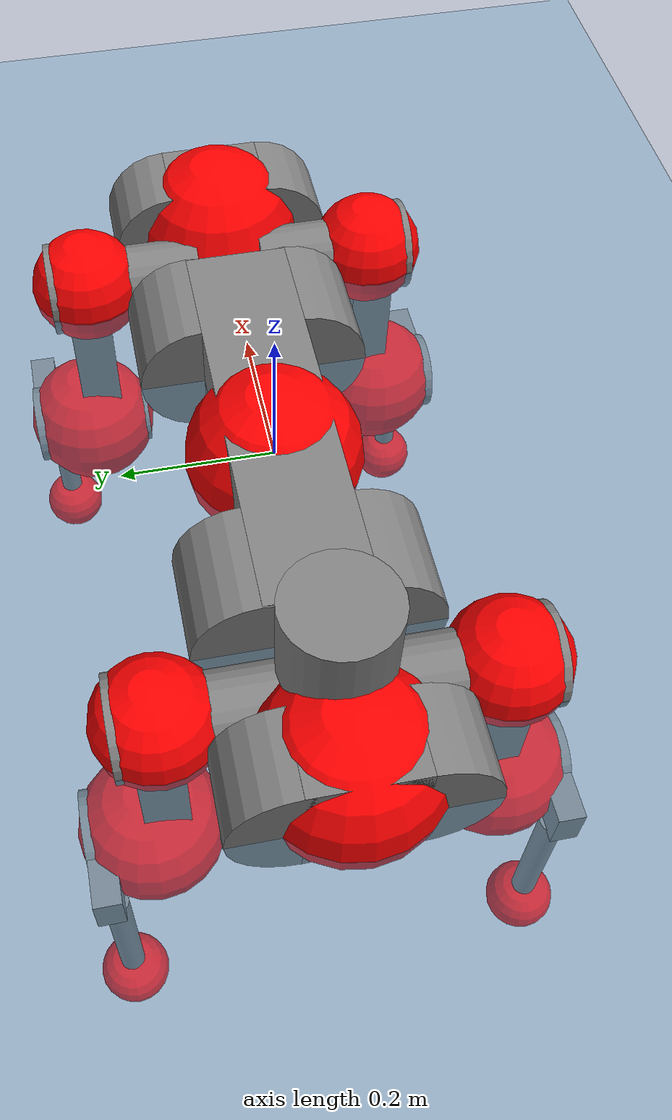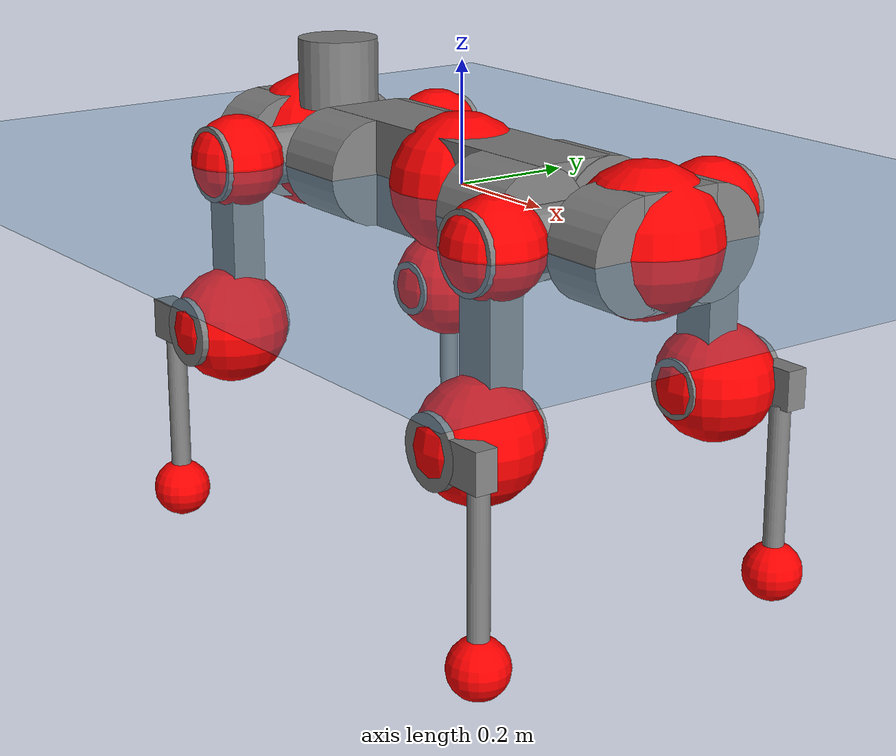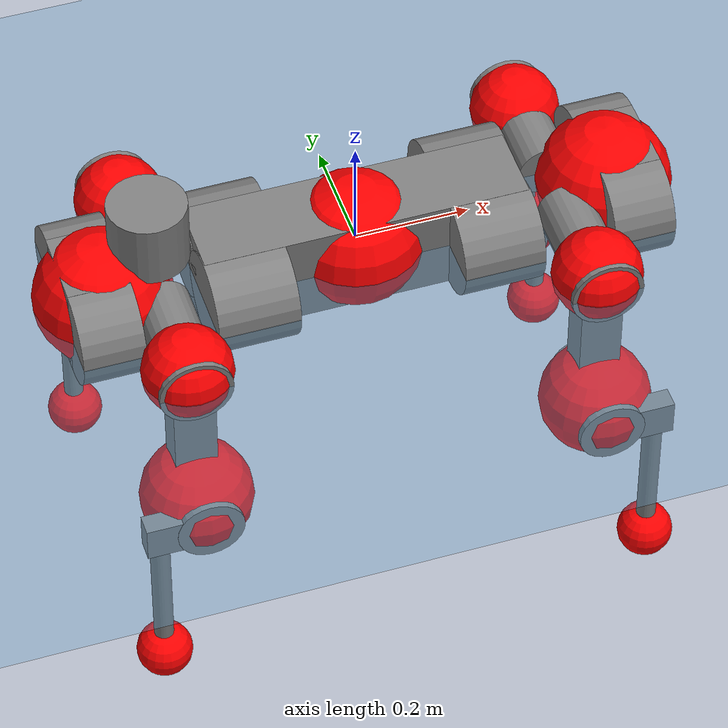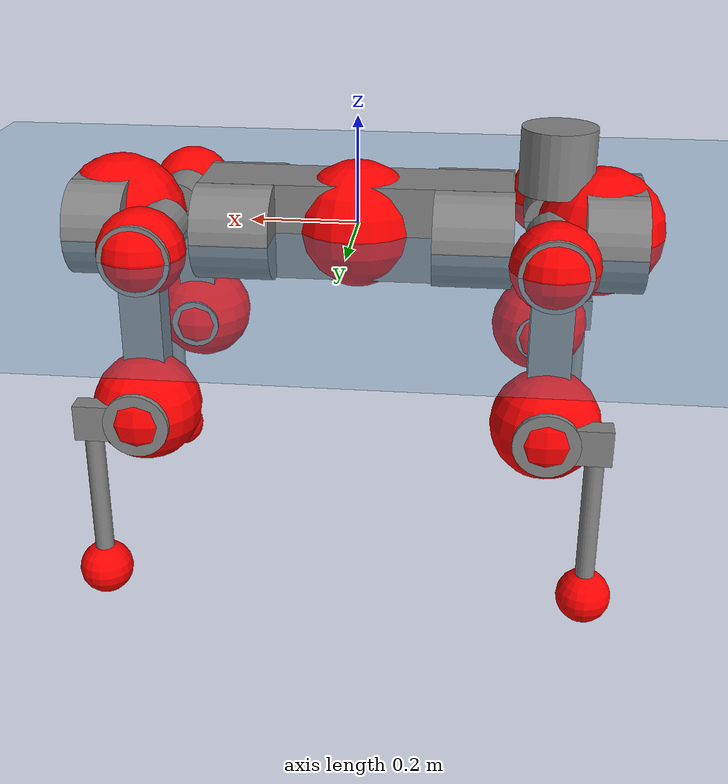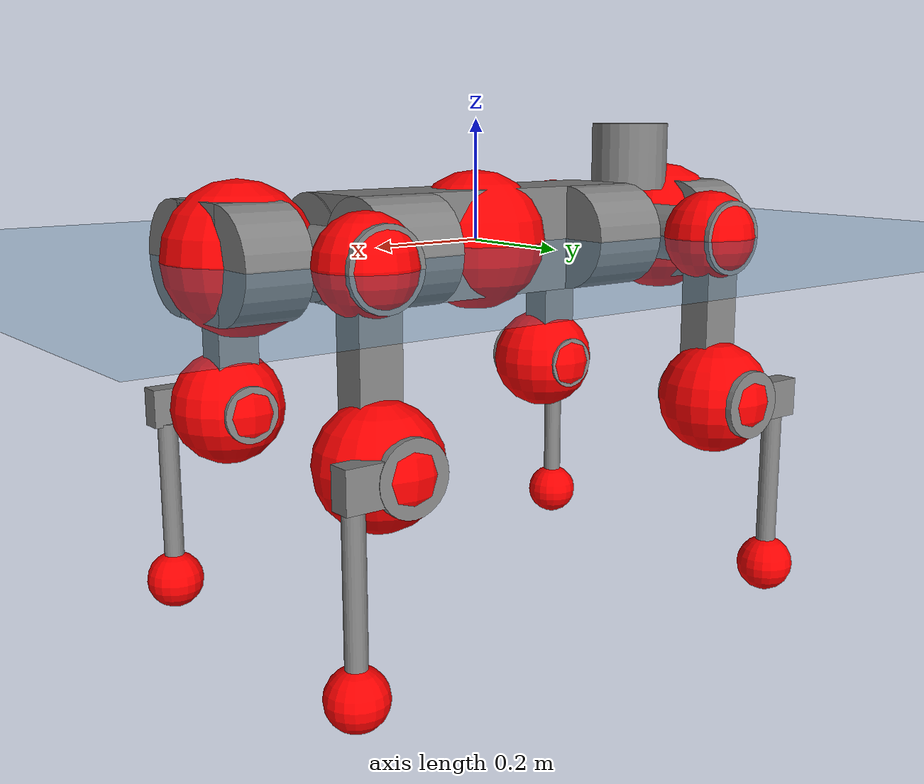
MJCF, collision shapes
<mujoco model="anymal_c">
  <compiler angle="radian" assetdir="assets" balanceinertia="true" inertiafromgeom="false"/>

  <option timestep="0.005" density="1.2" viscosity="2e-05"/>

  <size nkey="1"/>

  <visual>
    <quality shadowsize="8192"/>
    <map shadowclip="0.5"/>
  </visual>

  <default>
    <default class="/">
      <material specular="0" shininess="0.25"/>
      <geom contype="0" conaffinity="0" group="1" solref="-1000 -80"/>
      <site size="0.01 0.005 0.005" group="5"/>
      <general forcelimited="true" forcerange="-80 80" biastype="affine" gainprm="80" biasprm="0 -80 -2"/>
      <default class="anymal_c">
        <joint armature="0.01" damping="0.01" frictionloss="0.1"/>
        <default class="visual">
          <geom type="mesh" group="2"/>
          <default class="visual_zflip"/>
        </default>
        <default class="collision">
          <geom type="cylinder" group="3"/>
          <default class="foot">
            <geom size="0.03 0 0" type="sphere" condim="6" priority="1" friction="0.8 0.02 0.01" solimp="0.015 1 0.03"/>
          </default>
        </default>
      </default>
      <default class="reward_collision_sphere">
        <geom group="5" rgba="1 0 0 1"/>
      </default>
    </default>
  </default>

  <asset>
    <texture type="skybox" colorspace="auto" name="//unnamed_texture_0" builtin="gradient" rgb1="0.95 0.95 0.95" rgb2="0.95 0.95 0.95" width="100" height="600"/>
    <texture type="2d" colorspace="auto" name="texplane" builtin="checker" rgb1="0.345 0.575 0.748" rgb2="0.345 0.575 0.748" markrgb="1 1 1" width="512" height="512"/>
    <texture type="2d" colorspace="linear" name="base" file="base.png"/>
    <texture type="2d" colorspace="linear" name="top_shell" file="top_shell.png"/>
    <texture type="2d" colorspace="linear" name="bottom_shell" file="bottom_shell.png"/>
    <texture type="2d" colorspace="linear" name="remote" file="remote.png"/>
    <texture type="2d" colorspace="linear" name="hatch" file="hatch.png"/>
    <texture type="2d" colorspace="linear" name="handle" file="handle.png"/>
    <texture type="2d" colorspace="linear" name="face" file="face.png"/>
    <texture type="2d" colorspace="linear" name="battery" file="battery.png"/>
    <texture type="2d" colorspace="linear" name="lidar_cage" file="lidar_cage.png"/>
    <texture type="2d" colorspace="linear" name="depth_camera" file="depth_camera.png"/>
    <texture type="2d" colorspace="linear" name="wide_angle_camera" file="wide_angle_camera.png"/>
    <texture type="2d" colorspace="linear" name="lidar" file="lidar.png"/>
    <texture type="2d" colorspace="linear" name="drive" file="drive.png"/>
    <texture type="2d" colorspace="linear" name="hip_l" file="hip_l.png"/>
    <texture type="2d" colorspace="linear" name="shank_l" file="shank_l.png"/>
    <texture type="2d" colorspace="linear" name="foot" file="foot.png"/>
    <texture type="2d" colorspace="linear" name="thigh" file="thigh.png"/>
    <texture type="2d" colorspace="linear" name="shank_r" file="shank_r.png"/>
    <texture type="2d" colorspace="linear" name="hip_r" file="hip_r.png"/>
    <material name="MatPlane" class="/" texture="texplane" texuniform="true" texrepeat="2 2" specular="0.9" shininess="0.5"/>
    <material name="black_plastic" class="/" rgba="0.007 0.007 0.007 1"/>
    <material name="green" class="/" rgba="0.052 0.178 0.033 1"/>
    <material name="red" class="/" rgba="0.178 0.006 0.005 1"/>
    <material name="yellow" class="/" rgba="0.178 0.119 0.006 1"/>
    <material name="lwl" class="/" rgba="0.8 0.8 0.8 1"/>
    <material name="base" class="/" texture="base"/>
    <material name="top_shell" class="/" texture="top_shell"/>
    <material name="bottom_shell" class="/" texture="bottom_shell"/>
    <material name="hip_l" class="/" texture="hip_l"/>
    <material name="thigh" class="/" texture="thigh"/>
    <material name="shank_l" class="/" texture="shank_l"/>
    <material name="foot" class="/" texture="foot"/>
    <material name="hip_r" class="/" texture="hip_r"/>
    <material name="shank" class="/" texture="shank_r"/>
    <material name="hatch" class="/" texture="hatch"/>
    <material name="remote" class="/" texture="remote"/>
    <material name="handle" class="/" texture="handle"/>
    <material name="face" class="/" texture="face"/>
    <material name="depth_camera" class="/" texture="depth_camera"/>
    <material name="wide_angle_camera" class="/" texture="wide_angle_camera"/>
    <material name="battery" class="/" texture="battery"/>
    <material name="lidar_cage" class="/" texture="lidar_cage"/>
    <material name="lidar" class="/" texture="lidar"/>
    <material name="drive" class="/" texture="drive"/>
    <mesh name="base_0" class="/" file="base_0.obj"/>
    <mesh name="base_1" class="/" file="base_1.obj"/>
    <mesh name="base_2" class="/" file="base_2.obj"/>
    <mesh name="base_3" class="/" file="base_3.obj"/>
    <mesh name="base_4" class="/" file="base_4.obj"/>
    <mesh name="base_5" class="/" file="base_5.obj"/>
    <mesh name="top_shell" class="/" file="top_shell.obj"/>
    <mesh name="bottom_shell" class="/" file="bottom_shell.obj"/>
    <mesh name="remote" class="/" file="remote.obj"/>
    <mesh name="handle" class="/" file="handle.obj"/>
    <mesh name="face" class="/" file="face.obj"/>
    <mesh name="wide_angle_camera" class="/" file="wide_angle_camera.obj"/>
    <mesh name="depth_camera" class="/" file="depth_camera.obj"/>
    <mesh name="battery" class="/" file="battery.obj"/>
    <mesh name="lidar_cage" class="/" file="lidar_cage.obj"/>
    <mesh name="lidar" class="/" file="lidar.obj"/>
    <mesh name="drive" class="/" file="drive.obj"/>
    <mesh name="hip_l" class="/" file="hip_l.obj"/>
    <mesh name="thigh" class="/" file="thigh.obj"/>
    <mesh name="shank_l" class="/" file="shank_l.obj"/>
    <mesh name="foot" class="/" file="foot.obj"/>
    <mesh name="hip_r" class="/" file="hip_r.obj"/>
    <mesh name="hatch" class="/" file="hatch.obj"/>
    <mesh name="shank_r" class="/" file="shank_r.obj"/>
  </asset>

  <worldbody>
    <geom name="floor" class="/" size="100 100 0.125" type="plane" group="0" material="MatPlane"/>
    <light name="toplight_shadow" class="/" pos="0 0 5" dir="0.0990148 0.0990148 -0.990148" type="directional" ambient="0.04 0.04 0.04" diffuse="0.55 0.55 0.55" specular="0.12 0.12 0.12"/>
    <light name="toplight_fill" class="/" pos="0 0 5" dir="0.0990148 0.0990148 -0.990148" type="directional" castshadow="false" ambient="0.04 0.04 0.04" diffuse="0.3 0.3 0.3" specular="0.08 0.08 0.08"/>
    <body name="trunk" childclass="anymal_c" pos="0.00036372 0.000118246 0.000223258" quat="1 -0.000115384 -5.08056e-05 0.000215994">
      <inertial pos="0.0019213 -0.00116522 0.0477895" quat="0.498259 0.499288 0.501122 0.501325" mass="17.2621" diaginertia="0.584031 0.502282 0.19944"/>
      <joint name="//unnamed_joint_0" type="free" armature="0" damping="0" frictionloss="0"/>
      <geom name="//unnamed_geom_1" class="visual" material="green" mesh="base_0"/>
      <geom name="//unnamed_geom_2" class="visual" material="yellow" mesh="base_1"/>
      <geom name="//unnamed_geom_3" class="visual" material="red" mesh="base_2"/>
      <geom name="//unnamed_geom_4" class="visual" material="black_plastic" mesh="base_3"/>
      <geom name="//unnamed_geom_5" class="visual" material="lwl" mesh="base_4"/>
      <geom name="//unnamed_geom_6" class="visual" material="base" mesh="base_5"/>
      <geom name="trunk_1" class="collision" size="0.28321 0.068361 0.0878928" type="box"/>
      <geom name="trunk_2" class="collision" size="0.0878928 0.0708025" pos="0.214299 0.067141 0" quat="0.707107 0 0.707107 0"/>
      <geom name="trunk_3" class="collision" size="0.0878928 0.0708025" pos="-0.214299 0.067141 0" quat="0.707107 0 0.707107 0"/>
      <geom name="trunk_4" class="collision" size="0.0878928 0.0708025" pos="0.214299 -0.067141 0" quat="0.707107 0 0.707107 0"/>
      <geom name="trunk_5" class="collision" size="0.0878928 0.0708025" pos="-0.214299 -0.067141 0" quat="0.707107 0 0.707107 0"/>
      <geom name="//unnamed_geom_12" class="visual" material="top_shell" mesh="top_shell"/>
      <geom name="//unnamed_geom_13" class="visual" material="bottom_shell" mesh="bottom_shell"/>
      <geom name="//unnamed_geom_14" class="visual" material="remote" mesh="remote"/>
      <geom name="//unnamed_geom_15" class="visual" material="handle" mesh="handle"/>
      <geom name="//unnamed_geom_16" class="visual" pos="0.4084 0 0" quat="1 0 0 0" material="face" mesh="face"/>
      <geom name="trunk_6" class="collision" size="0.0537122 0.068361 0.0878928" pos="0.462591 0 0" type="box"/>
      <geom name="//unnamed_geom_18" class="collision" size="0.0878928 0.0537122" pos="0.462591 0.067141 0" quat="0.707107 0 0.707107 0"/>
      <geom name="//unnamed_geom_19" class="collision" size="0.0878928 0.0537122" pos="0.462591 -0.067141 0" quat="0.707107 0 0.707107 0"/>
      <geom name="//unnamed_geom_20" class="visual" pos="0.454856 0 -0.0287715" quat="0.965926 0 0.258819 0" material="depth_camera" mesh="depth_camera"/>
      <geom name="//unnamed_geom_21" class="visual" pos="0.505451 0 0.0147502" material="wide_angle_camera" mesh="wide_angle_camera"/>
      <geom name="//unnamed_geom_22" class="visual_zflip" pos="-0.4084 0 0" quat="0 0 0 1" material="face" mesh="face"/>
      <geom name="trunk_7" class="collision" size="0.0537122 0.068361 0.0878928" pos="-0.462591 0 0" quat="0 0 0 1" type="box"/>
      <geom name="//unnamed_geom_24" class="collision" size="0.0878928 0.0537122" pos="-0.462591 -0.067141 0" quat="0 -0.707107 0 0.707107"/>
      <geom name="//unnamed_geom_25" class="collision" size="0.0878928 0.0537122" pos="-0.462591 0.067141 0" quat="0 -0.707107 0 0.707107"/>
      <geom name="//unnamed_geom_26" class="visual" pos="-0.454856 0 -0.0287715" quat="0 -0.258819 0 0.965926" material="depth_camera" mesh="depth_camera"/>
      <geom name="//unnamed_geom_27" class="visual_zflip" pos="-0.505451 0 0.0147502" quat="0 0 0 1" material="wide_angle_camera" mesh="wide_angle_camera"/>
      <geom name="//unnamed_geom_28" class="visual" material="battery" mesh="battery"/>
      <geom name="//unnamed_geom_29" class="visual" pos="0 0.0729943 0.0286232" quat="0.683013 -0.183013 0.183013 0.683013" material="depth_camera" mesh="depth_camera"/>
      <geom name="//unnamed_geom_30" class="visual" pos="0 -0.0729943 0.0286232" quat="0.683013 0.183013 0.183013 -0.683013" material="depth_camera" mesh="depth_camera"/>
      <geom name="//unnamed_geom_31" class="visual" pos="-0.358643 0 0.0724208" quat="1 0 0 0" material="lidar_cage" mesh="lidar_cage"/>
      <geom name="trunk_8" class="collision" size="0.068361 0.0585952" pos="-0.358643 0 0.13154"/>
      <geom name="//unnamed_geom_33" class="visual" pos="-0.358643 -1.02645e-05 0.140112" quat="0.707107 0 0 -0.707107" material="lidar" mesh="lidar"/>
      <geom name="//unnamed_geom_34" class="visual" pos="0.295487 0.0997617 -4.51256e-10" quat="0.258819 0.965926 0 0" material="drive" mesh="drive"/>
      <geom name="//unnamed_geom_35" class="visual" pos="0.295487 -0.0997617 4.51256e-10" quat="0.258819 -0.965926 0 0" material="drive" mesh="drive"/>
      <geom name="//unnamed_geom_36" class="visual" pos="-0.295487 0.0997617 4.51256e-10" quat="0 0 0.965926 -0.258819" material="drive" mesh="drive"/>
      <geom name="//unnamed_geom_37" class="visual" pos="-0.295487 -0.0997617 -4.51256e-10" quat="0 0 -0.965926 -0.258819" material="drive" mesh="drive"/>
      <geom name="//unnamed_geom_38" class="visual" pos="0.114293 0 0.0719281" quat="1 0 0 0" material="hatch" mesh="hatch"/>
      <geom name="//unnamed_geom_39" class="reward_collision_sphere" size="0.11719"/>
      <geom name="//unnamed_geom_40" class="reward_collision_sphere" size="0.11719" pos="0.443378 0 0"/>
      <geom name="//unnamed_geom_41" class="reward_collision_sphere" size="0.11719" pos="-0.443378 0 0"/>
      <site name="imu" pos="0.236246 0.00538119 0.0504501" size="0.00976586"/>
      <camera name="track" pos="0 -1.91831 0" quat="0.707107 0.707107 0 0" mode="trackcom"/>
      <camera name="ego_camera" pos="0.443378 0 -0.0394127" quat="-0.5 -0.5 0.5 0.5"/>
      <body name="LF_HIP" pos="0.296293 0.0998431 0.000557947" quat="0.25896 0.965888 -0.000580483 9.38527e-05">
        <inertial pos="0.056965 -0.0134482 -0.00829892" quat="-0.12897 0.709395 -0.138546 0.678919" mass="2.55721" diaginertia="0.00536033 0.00400736 0.0030377"/>
        <joint name="LF_HAA" pos="0 0 0" axis="0.999994 -0.00129137 -0.00320611" stiffness="0.00115355" range="-0.722607 0.472095" armature="0.0105191" damping="0.00150461" frictionloss="0.0960966"/>
        <geom name="//unnamed_geom_42" class="visual" pos="0 -2.65454e-05 4.36006e-06" quat="0.258819 -0.965926 0 0" material="hip_l" mesh="hip_l"/>
        <geom name="//unnamed_geom_43" class="visual" pos="0.0590185 -0.0711788 -0.0412886" quat="0.183013 -0.683013 0.683013 0.183013" material="drive" mesh="drive"/>
        <geom name="//unnamed_geom_44" class="collision" size="0.0488293 0.068361" pos="0.0590185 -0.0114713 -0.00680361" quat="-0.353553 -0.612372 0.612372 -0.353553"/>
        <body name="LF_THIGH" pos="0.0591695 -0.0692803 -0.0413528" quat="0.183218 -0.683213 0.68285 0.182668">
          <inertial pos="0.0295354 0.000228098 -0.240871" quat="0.993222 -0.00604537 -0.0791321 0.0849196" mass="2.83756" diaginertia="0.0276678 0.0242607 0.00386901"/>
          <joint name="LF_HFE" pos="0 0 0" axis="0.999971 0.00613767 -0.00444406" range="-3.13515 3.1441" armature="0.00996418" damping="0.0127371" frictionloss="0.0930013"/>
          <geom name="//unnamed_geom_45" class="visual" pos="0.000519817 8.1911e-07 0" quat="0.707107 0 0 -0.707107" material="thigh" mesh="thigh"/>
          <geom name="//unnamed_geom_46" class="collision" size="0.0634781 0.0390634" pos="0.0394114 0 0" quat="0.5 0.5 -0.5 -0.5"/>
          <geom name="//unnamed_geom_47" class="collision" size="0.036622 0.0292976 0.138005" pos="0.0295585 0 -0.139239" quat="0.707107 0 0 -0.707107" type="box"/>
          <geom name="//unnamed_geom_48" class="visual" pos="0.098824 0 -0.280815" quat="1 0 0 0" material="drive" mesh="drive"/>
          <geom name="//unnamed_geom_49" class="collision" size="0.0488293 0.068361" pos="0.0298541 0 -0.280815" quat="0.707107 0 0.707107 0"/>
          <geom name="//unnamed_geom_50" class="reward_collision_sphere" size="0.0781269" pos="0.0246321 0 0"/>
          <body name="LF_SHANK" pos="0.0990602 -0.000865282 -0.282506" quat="1 7.39403e-05 0.000237375 0.000146738">
            <inertial pos="0.00529383 -0.0586651 -0.0794446" quat="0.993075 -0.114689 -0.000886659 -0.0254439" mass="0.555434" diaginertia="0.00952925 0.00748737 0.0010496"/>
            <joint name="LF_KFE" pos="0 0 0" axis="1 2.92841e-05 -5.24561e-06" range="-3.13389 3.12242" armature="0.00929373" damping="0.0029548" frictionloss="0.0950193"/>
            <geom name="//unnamed_geom_51" class="visual" pos="0.000169501 0.000903788 0" quat="0.707107 0 0 -0.707107" material="shank_l" mesh="shank_l"/>
            <geom name="LF_kfe_act" class="collision" size="0.0585952 0.0195317" pos="0.0197057 0 0" quat="0.5 0.5 -0.5 -0.5"/>
            <geom name="//unnamed_geom_53" class="collision" size="0.0561527 0.0329598 0.0185551" pos="0.0197057 -0.0551506 0" quat="0.5 0.5 -0.5 -0.5" type="box"/>
            <geom name="//unnamed_geom_54" class="visual" pos="0.0128579 -0.0840666 -0.333008" quat="0.382683 0 0 -0.92388" material="foot" mesh="foot"/>
            <geom name="LF_calf" class="collision" size="0.0170903 0.137945" pos="0.012858 -0.0843579 -0.166504" quat="0.707107 0 0 -0.707107"/>
            <geom name="LF_foot" class="foot" size="0.0323915" pos="0.012858 -0.0843579 -0.310838" quat="0.707107 0 0 -0.707107"/>
            <geom name="//unnamed_geom_57" class="reward_collision_sphere" size="0.0976586" pos="-0.0492642 0 0"/>
            <geom name="//unnamed_geom_58" class="reward_collision_sphere" size="0.0488293" pos="0.012858 -0.0843579 -0.310838"/>
            <site name="LF_foot" class="foot" pos="0.012858 -0.0843579 -0.310838" quat="0.707107 0 0 -0.707107" size="0.00976586"/>
          </body>
        </body>
      </body>
      <body name="RF_HIP" pos="0.296621 -0.0997732 0.0014063" quat="0.258852 -0.965917 1.81757e-05 6.96117e-06">
        <inertial pos="0.0568714 0.0145052 -0.00791478" quat="0.135935 0.679023 0.12822 0.709936" mass="2.57718" diaginertia="0.00546651 0.00392558 0.00303217"/>
        <joint name="RF_HAA" pos="0 0 0" axis="0.999997 -0.00212907 0.00152002" stiffness="0.000221931" range="-0.517181 0.730589" armature="0.00934579" damping="0.0100122" frictionloss="0.0926199"/>
        <geom name="//unnamed_geom_59" class="visual" pos="0 2.65452e-05 4.36004e-06" quat="0.258819 0.965926 0 0" material="hip_r" mesh="hip_r"/>
        <geom name="//unnamed_geom_60" class="visual" pos="0.0590185 0.0711788 -0.0412886" quat="0.183013 0.683013 0.683013 -0.183013" material="drive" mesh="drive"/>
        <geom name="//unnamed_geom_61" class="collision" size="0.0488293 0.068361" pos="0.0590185 0.0114713 -0.00680361" quat="-0.353553 0.612372 0.612372 0.353553"/>
        <body name="RF_THIGH" pos="0.0602778 0.0709983 -0.0409491" quat="0.183053 0.682882 0.683139 -0.182986">
          <inertial pos="0.0305233 0.000414416 -0.242346" quat="0.993077 -0.00598666 -0.0766486 0.0888088" mass="2.80151" diaginertia="0.0281553 0.024042 0.003828"/>
          <joint name="RF_HFE" pos="0 0 0" axis="0.999999 0.0012822 -0.000887406" stiffness="0.00519257" range="-3.10755 3.13193" armature="0.00976413" damping="0.00579871" frictionloss="0.107655"/>
          <geom name="//unnamed_geom_62" class="visual" pos="0.000519817 8.1911e-07 0" quat="0.707107 0 0 -0.707107" material="thigh" mesh="thigh"/>
          <geom name="//unnamed_geom_63" class="collision" size="0.0634781 0.0390634" pos="0.0394114 0 0" quat="0.5 0.5 0.5 0.5"/>
          <geom name="//unnamed_geom_64" class="collision" size="0.036622 0.0292976 0.138005" pos="0.0295585 0 -0.139239" quat="0.707107 0 0 0.707107" type="box"/>
          <geom name="//unnamed_geom_65" class="visual" pos="0.098824 0 -0.280815" quat="1 0 0 0" material="drive" mesh="drive"/>
          <geom name="//unnamed_geom_66" class="collision" size="0.0488293 0.068361" pos="0.0298541 0 -0.280815" quat="0.707107 0 0.707107 0"/>
          <geom name="//unnamed_geom_67" class="reward_collision_sphere" size="0.0781269" pos="0.0246321 0 0"/>
          <body name="RF_SHANK" pos="0.099485 -0.00112984 -0.281713" quat="1 2.51439e-05 -6.28113e-07 -5.32371e-05">
            <inertial pos="0.00545057 0.0588545 -0.0778987" quat="0.992999 0.114742 0.00139196 0.0280232" mass="0.545585" diaginertia="0.00925393 0.00747294 0.00104058"/>
            <joint name="RF_KFE" pos="0 0 0" axis="1 0.00019411 -0.000136548" range="-3.11824 3.12499" armature="0.0100952" damping="0.0117775" frictionloss="0.0899469"/>
            <geom name="//unnamed_geom_68" class="visual" pos="0.0001695 -0.000903787 0" quat="0.707107 0 0 0.707107" material="shank" mesh="shank_r"/>
            <geom name="RF_kfe_act" class="collision" size="0.0585952 0.0195317" pos="0.0197057 0 0" quat="0.5 0.5 0.5 0.5"/>
            <geom name="//unnamed_geom_70" class="collision" size="0.0561527 0.0329598 0.0185551" pos="0.0197057 0.0551506 0" quat="0.5 0.5 0.5 0.5" type="box"/>
            <geom name="//unnamed_geom_71" class="visual" pos="0.012858 0.0840666 -0.333008" quat="0.382683 0 0 0.92388" material="foot" mesh="foot"/>
            <geom name="RF_calf" class="collision" size="0.0170903 0.137945" pos="0.012858 0.0843579 -0.166504" quat="0.707107 0 0 0.707107"/>
            <geom name="RF_foot" class="foot" size="0.0275379" pos="0.012858 0.0843579 -0.310838" quat="0.707107 0 0 0.707107"/>
            <geom name="//unnamed_geom_74" class="reward_collision_sphere" size="0.0976586" pos="-0.0492642 0 0"/>
            <geom name="//unnamed_geom_75" class="reward_collision_sphere" size="0.0488293" pos="0.012858 0.0843579 -0.310838"/>
            <site name="RF_foot" class="foot" pos="0.012858 0.0843579 -0.310838" quat="0.707107 0 0 0.707107" size="0.00976586"/>
          </body>
        </body>
      </body>
      <body name="LH_HIP" pos="-0.296422 0.0996638 -0.000604401" quat="-3.60028e-05 2.03249e-05 0.965926 -0.258817">
        <inertial pos="0.0549815 0.0156036 -0.00829009" quat="0.134085 0.678919 0.125166 0.710931" mass="2.56799" diaginertia="0.00544176 0.00403707 0.00299061"/>
        <joint name="LH_HAA" pos="0 0 0" axis="0.999996 0.000112885 -0.00296965" stiffness="0.00104871" range="-0.510153 0.682532" armature="0.00917315" damping="0.0137998" frictionloss="0.0987584"/>
        <geom name="//unnamed_geom_76" class="visual" pos="0 2.65452e-05 4.36004e-06" quat="-0.258819 -0.965926 0 0" material="hip_r" mesh="hip_r"/>
        <geom name="//unnamed_geom_77" class="visual" pos="0.0590185 0.0711788 -0.0412886" quat="0.183013 0.683013 0.683013 -0.183013" material="drive" mesh="drive"/>
        <geom name="//unnamed_geom_78" class="collision" size="0.0488293 0.068361" pos="0.0590185 0.0114713 -0.00680361" quat="-0.353553 0.612372 0.612372 0.353553"/>
        <body name="LH_THIGH" pos="0.0586062 0.0681727 -0.0407727" quat="0.183007 0.68295 0.683038 -0.183157">
          <inertial pos="0.0303872 0.000332526 -0.242387" quat="0.992913 -0.00501471 -0.0793069 0.0883633" mass="2.85824" diaginertia="0.0280491 0.0244414 0.00385586"/>
          <joint name="LH_HFE" pos="0 0 0" axis="0.999986 -0.00481215 -0.00230343" range="-3.13914 3.12985" armature="0.0102207" damping="0.0136187" frictionloss="0.0937361"/>
          <geom name="//unnamed_geom_79" class="visual" pos="0.000519817 8.1911e-07 0" quat="0.707107 0 0 -0.707107" material="thigh" mesh="thigh"/>
          <geom name="//unnamed_geom_80" class="collision" size="0.0634781 0.0390634" pos="0.0394114 0 0" quat="0.5 0.5 -0.5 -0.5"/>
          <geom name="//unnamed_geom_81" class="collision" size="0.036622 0.0292976 0.138005" pos="0.0295585 0 -0.139239" quat="0.707107 0 0 -0.707107" type="box"/>
          <geom name="//unnamed_geom_82" class="visual" pos="0.098824 0 -0.280815" quat="1 0 0 0" material="drive" mesh="drive"/>
          <geom name="//unnamed_geom_83" class="collision" size="0.0488293 0.068361" pos="0.0298541 0 -0.280815" quat="0.707107 0 0.707107 0"/>
          <geom name="//unnamed_geom_84" class="reward_collision_sphere" size="0.0781269" pos="0.0246321 0 0"/>
          <body name="LH_SHANK" pos="0.0998438 -0.000330869 -0.280648" quat="1 5.94437e-05 0.000235166 0.000268744">
            <inertial pos="0.00536393 0.0585896 -0.0793407" quat="0.992795 0.114549 0.00122241 0.0351423" mass="0.548981" diaginertia="0.009473 0.00756866 0.00101863"/>
            <joint name="LH_KFE" pos="0 0 0" axis="0.999993 0.00275996 0.00255845" range="-3.14569 3.13787" armature="0.00967876" damping="0.0106511" frictionloss="0.0955315"/>
            <geom name="//unnamed_geom_85" class="visual" pos="0.0001695 -0.000903787 0" quat="-0.707107 0 0 -0.707107" material="shank" mesh="shank_r"/>
            <geom name="LH_kfe_act" class="collision" size="0.0585952 0.0195317" pos="0.0197057 0 0" quat="0.5 0.5 -0.5 -0.5"/>
            <geom name="//unnamed_geom_87" class="collision" size="0.0561527 0.0329598 0.0185551" pos="0.0197057 0.0551506 0" quat="0.5 0.5 -0.5 -0.5" type="box"/>
            <geom name="//unnamed_geom_88" class="visual" pos="0.012858 0.0840666 -0.333008" quat="-0.382683 0 0 -0.92388" material="foot" mesh="foot"/>
            <geom name="LH_calf" class="collision" size="0.0170903 0.137945" pos="0.012858 0.0843579 -0.166504" quat="0.707107 0 0 -0.707107"/>
            <geom name="LH_foot" class="foot" size="0.0330559" pos="0.012858 0.0843579 -0.310838" quat="0.707107 0 0 -0.707107"/>
            <geom name="//unnamed_geom_91" class="reward_collision_sphere" size="0.0976586" pos="-0.0492642 0 0"/>
            <geom name="//unnamed_geom_92" class="reward_collision_sphere" size="0.0488293" pos="0.012858 0.0843579 -0.310838"/>
            <site name="LH_foot" class="foot" pos="0.012858 0.0843579 -0.310838" quat="0.707107 0 0 -0.707107" size="0.00976586"/>
          </body>
        </body>
      </body>
      <body name="RH_HIP" pos="-0.29564 -0.101403 0.000904943" quat="8.1289e-05 -0.000304136 -0.965923 -0.258829">
        <inertial pos="0.0545349 -0.0146134 -0.00759159" quat="-0.128662 0.710397 -0.136483 0.678347" mass="2.61733" diaginertia="0.00551573 0.00404315 0.00303033"/>
        <joint name="RH_HAA" pos="0 0 0" axis="0.999999 0.0001588 0.00110831" stiffness="0.00139442" range="-0.737976 0.527447" armature="0.00957298" damping="0.0109097" frictionloss="0.0985954"/>
        <geom name="//unnamed_geom_93" class="visual" pos="0 -2.65454e-05 4.36006e-06" quat="-0.258819 0.965926 0 0" material="hip_l" mesh="hip_l"/>
        <geom name="//unnamed_geom_94" class="visual" pos="0.0590185 -0.0711788 -0.0412886" quat="-0.183013 0.683013 -0.683013 -0.183013" material="drive" mesh="drive"/>
        <geom name="//unnamed_geom_95" class="collision" size="0.0488293 0.068361" pos="0.0590185 -0.0114713 -0.00680361" quat="0.353553 0.612372 -0.612372 0.353553"/>
        <body name="RH_THIGH" pos="0.0591817 -0.0689211 -0.0404186" quat="-0.183026 0.683008 -0.68301 -0.183029">
          <inertial pos="0.0304733 8.05581e-05 -0.241464" quat="0.993138 -0.00477144 -0.0808906 0.08433" mass="2.7332" diaginertia="0.0271486 0.0235941 0.00379524"/>
          <joint name="RH_HFE" pos="0 0 0" axis="0.999997 -0.00103568 0.00221081" range="-3.13915 3.14837" armature="0.0102292" damping="0.0119952" frictionloss="0.0987487"/>
          <geom name="//unnamed_geom_96" class="visual" pos="0.000519817 8.1911e-07 0" quat="0.707107 0 0 -0.707107" material="thigh" mesh="thigh"/>
          <geom name="//unnamed_geom_97" class="collision" size="0.0634781 0.0390634" pos="0.0394114 0 0" quat="0.5 0.5 0.5 0.5"/>
          <geom name="//unnamed_geom_98" class="collision" size="0.036622 0.0292976 0.138005" pos="0.0295585 0 -0.139239" quat="0.707107 0 0 0.707107" type="box"/>
          <geom name="//unnamed_geom_99" class="visual" pos="0.098824 0 -0.280815" quat="1 0 0 0" material="drive" mesh="drive"/>
          <geom name="//unnamed_geom_100" class="collision" size="0.0488293 0.068361" pos="0.0298541 0 -0.280815" quat="0.707107 0 0.707107 0"/>
          <geom name="//unnamed_geom_101" class="reward_collision_sphere" size="0.0781269" pos="0.0246321 0 0"/>
          <body name="RH_SHANK" pos="0.0974805 0.000147159 -0.281524" quat="1 -0.000460076 -0.000164287 -0.000169394">
            <inertial pos="0.00636578 -0.0586271 -0.0795114" quat="0.992665 -0.117641 0.00047163 -0.0278785" mass="0.553277" diaginertia="0.00956215 0.00757599 0.00103947"/>
            <joint name="RH_KFE" pos="0 0 0" axis="0.99999 0.00335277 -0.00291201" range="-3.13916 3.14884" armature="0.00899237" damping="0.00459567" frictionloss="0.0980029"/>
            <geom name="//unnamed_geom_102" class="visual" pos="0.000169501 0.000903788 0" quat="0.707107 0 0 -0.707107" material="shank_l" mesh="shank_l"/>
            <geom name="RH_kfe_act" class="collision" size="0.0585952 0.0195317" pos="0.0197057 0 0" quat="0.5 0.5 0.5 0.5"/>
            <geom name="//unnamed_geom_104" class="collision" size="0.0561527 0.0329598 0.0185551" pos="0.0197057 -0.0551506 0" quat="0.5 0.5 0.5 0.5" type="box"/>
            <geom name="//unnamed_geom_105" class="visual" pos="0.0128579 -0.0840666 -0.333008" quat="0.382683 0 0 -0.92388" material="foot" mesh="foot"/>
            <geom name="RH_calf" class="collision" size="0.0170903 0.137945" pos="0.012858 -0.0843579 -0.166504" quat="0.707107 0 0 0.707107"/>
            <geom name="RH_foot" class="foot" size="0.0263273" pos="0.012858 -0.0843579 -0.310838" quat="0.707107 0 0 0.707107"/>
            <geom name="//unnamed_geom_108" class="reward_collision_sphere" size="0.0976586" pos="-0.0492642 0 0"/>
            <geom name="//unnamed_geom_109" class="reward_collision_sphere" size="0.0488293" pos="0.012858 -0.0843579 -0.310838"/>
            <site name="RH_foot" class="foot" pos="0.012858 -0.0843579 -0.310838" quat="0.707107 0 0 0.707107" size="0.00976586"/>
          </body>
        </body>
      </body>
    </body>
  </worldbody>

  <contact>
    <pair class="/" geom1="floor" geom2="LF_foot" name="//unnamed_contact_0"/>
    <pair class="/" geom1="floor" geom2="RF_foot" name="//unnamed_contact_1"/>
    <pair class="/" geom1="floor" geom2="LH_foot" name="//unnamed_contact_2"/>
    <pair class="/" geom1="floor" geom2="RH_foot" name="//unnamed_contact_3"/>
  </contact>

  <actuator>
    <general name="LF_HAA" class="/" joint="LF_HAA" forcerange="-77.2639 77.2639" gainprm="83.5256" biasprm="0 -83.5256 -1.93924"/>
    <general name="LF_HFE" class="/" joint="LF_HFE" forcerange="-80.8134 80.8134" gainprm="83.5256" biasprm="0 -83.5256 -1.93924"/>
    <general name="LF_KFE" class="/" joint="LF_KFE" forcerange="-77.6232 77.6232" gainprm="83.5256" biasprm="0 -83.5256 -1.93924"/>
    <general name="RF_HAA" class="/" joint="RF_HAA" forcerange="-80.5086 80.5086" gainprm="83.5256" biasprm="0 -83.5256 -1.93924"/>
    <general name="RF_HFE" class="/" joint="RF_HFE" forcerange="-76.3719 76.3719" gainprm="83.5256" biasprm="0 -83.5256 -1.93924"/>
    <general name="RF_KFE" class="/" joint="RF_KFE" forcerange="-76.2673 76.2673" gainprm="83.5256" biasprm="0 -83.5256 -1.93924"/>
    <general name="LH_HAA" class="/" joint="LH_HAA" forcerange="-78.6361 78.6361" gainprm="83.5256" biasprm="0 -83.5256 -1.93924"/>
    <general name="LH_HFE" class="/" joint="LH_HFE" forcerange="-76.5186 76.5186" gainprm="83.5256" biasprm="0 -83.5256 -1.93924"/>
    <general name="LH_KFE" class="/" joint="LH_KFE" forcerange="-77.723 77.723" gainprm="83.5256" biasprm="0 -83.5256 -1.93924"/>
    <general name="RH_HAA" class="/" joint="RH_HAA" forcerange="-79.9297 79.9297" gainprm="83.5256" biasprm="0 -83.5256 -1.93924"/>
    <general name="RH_HFE" class="/" joint="RH_HFE" forcerange="-74.1501 74.1501" gainprm="83.5256" biasprm="0 -83.5256 -1.93924"/>
    <general name="RH_KFE" class="/" joint="RH_KFE" forcerange="-80.0065 80.0065" gainprm="83.5256" biasprm="0 -83.5256 -1.93924"/>
  </actuator>

  <sensor>
    <gyro site="imu" name="imu_angular_velocity"/>
    <velocimeter site="imu" name="imu_linear_velocity"/>
    <framelinvel objtype="site" objname="LF_foot" name="LF_foot_global_linear_velocity"/>
    <framelinvel objtype="site" objname="RF_foot" name="RF_foot_global_linear_velocity"/>
    <framelinvel objtype="site" objname="LH_foot" name="LH_foot_global_linear_velocity"/>
    <framelinvel objtype="site" objname="RH_foot" name="RH_foot_global_linear_velocity"/>
  </sensor>

  <keyframe>
    <key name="home" qpos="0 0 0.55 1 0 0 0 0 0.4 -0.8 0 -0.4 0.8 0 -0.4 0.8 0 0.4 -0.8"/>
  </keyframe>
</mujoco>
